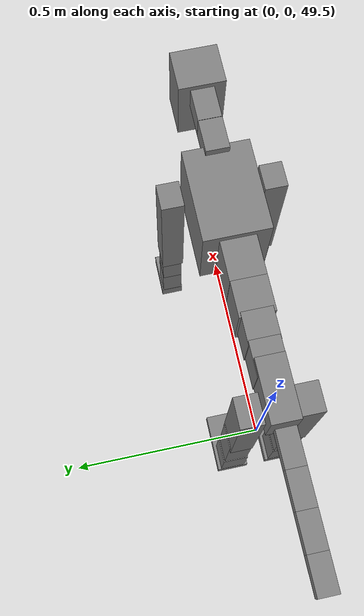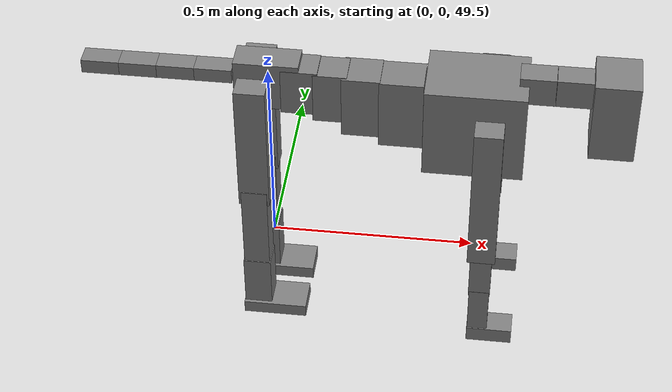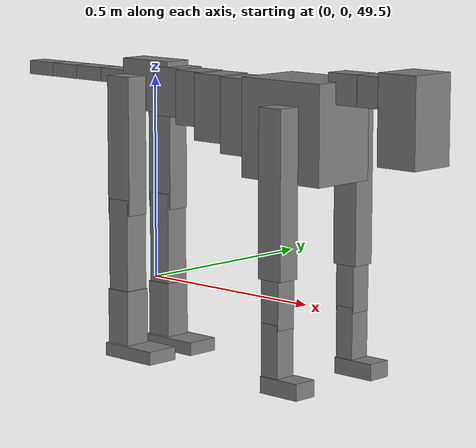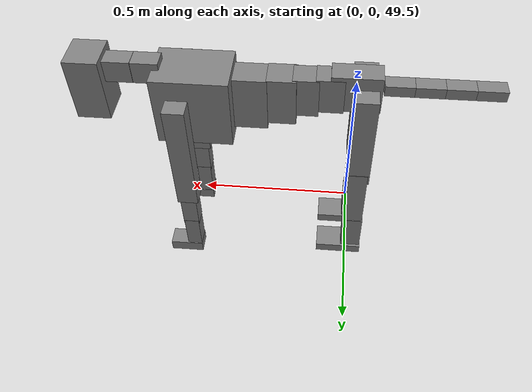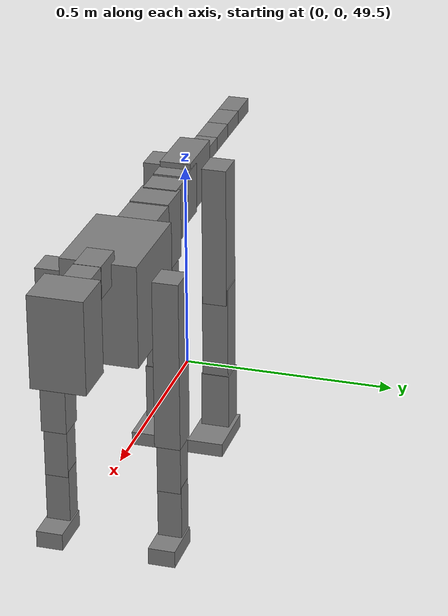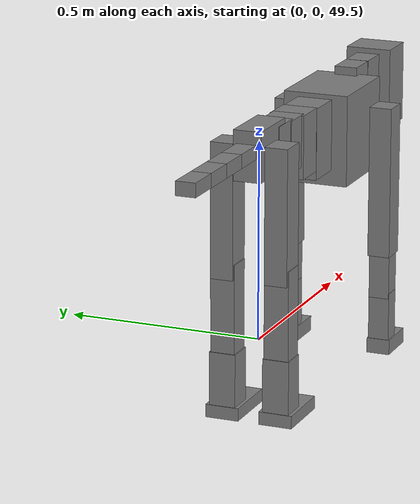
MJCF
<mujoco model="dog">

    <default>
        <joint armature="0.02" stiffness="1" damping="0.2" limited="true"/>
        <geom condim="3" friction="1 0.05 0.05" margin="0.01"/>
        <motor ctrllimited="true" ctrlrange="-1.0 1.0" forcelimited="true" gear="50"/>
    </default>

    <compiler inertiafromgeom="true" angle="radian"/>

    <option timestep="0.016" iterations="50" tolerance="1e-10" solver="Newton" jacobian="dense" cone="pyramidal"/>

    <size nconmax="20000" njmax="60000" nstack="5000000"/>
    <visual>
        <map force="0.1" zfar="30"/>
        <rgba haze="0.15 0.25 0.35 1"/>
        <quality shadowsize="2048"/>
        <global offwidth="800" offheight="800"/>
    </visual>

    <asset>
        <texture type="skybox" builtin="gradient" rgb1="0.3 0.5 0.7" rgb2="0 0 0" width="512" height="512"/>
        <texture name="texplane" type="2d" builtin="checker" rgb1=".2 .3 .4" rgb2=".1 0.15 0.2" width="512" height="512"
                 mark="cross" markrgb=".8 .8 .8"/>
        <texture name="texgeom" type="cube" builtin="flat" mark="cross" width="127" height="1278" rgb1="0.8 0.6 0.4"
                 rgb2="0.8 0.6 0.4" markrgb="1 1 1" random="0.01"/>

        <material name="matplane" reflectance="0.3" texture="texplane" texrepeat="1 1" texuniform="true"/>
        <material name="matgeom" texture="texgeom" texuniform="true" rgba="0.8 0.6 .4 1"/>
    </asset>

    <worldbody>
        <geom name="floor" pos="0 0 0" size="0 0 .25" type="plane" material="matplane" condim="3"/>

        <light directional="false" diffuse=".2 .2 .2" specular="0 0 0" pos="0 0 5" dir="0 0 -1" castshadow="false"/>
        <light mode="targetbodycom" target="torso" directional="false" diffuse=".8 .8 .8" specular="0.3 0.3 0.3"
               pos="0 0 4.0" dir="0 0 -1"/>

        <body name="root" pos="0 0 50">
            <freejoint name="root_1"/>
            <geom type="box" pos="0 0 -0.02" size="0.0774  0.0358  0.063" density="2030"/>

            <body name="spine1" pos="0.054 0 0">
                <joint name="spine1_y" axis="0 1 0" range="0 0.7" limited="true"/>
                <geom type="box" pos="0.02375 0 -0.03" size="0.04375  0.0375  0.05985" density="2030"/>

                <body name="spine2" pos="0.0612 0 0">
                    <joint name="spine2_y" axis="0 1 0" range="-0.15 0.15" limited="true"/>
                    <geom type="box" pos="0.03555  0  -0.04" size="0.04055  0.039  0.06615" density="2030"/>

                    <body name="spine3" pos="0.0730 0 0">
                        <joint name="spine3_y" axis="0 1 0" range="-0.15 0.15" limited="true"/>
                        <geom type="box" pos="0.03555  0  -0.057" size="0.04555  0.0445  0.081" density="2030"/>

                        <body name="spine4" pos="0.0780 0 0">
                            <joint name="spine4_y" axis="0 1 0" range="-0.15 0.15" limited="true"/>
                            <geom type="box" pos="0.05265  0  -0.07" size="0.05265  0.045  0.09135" density="2030"/>

                            <body name="torso" pos="0.1082 0 0">
                                <joint name="torso_y" axis="0 1 0" range="-0.15 0.15" limited="true"/>
                                <geom type="box" pos="0.11925  0  -0.085" size="0.11925  0.085  0.11745"
                                      density="2030"/>

                                <body name="neck1" pos="0.2160  0   0.0180">
                                    <joint name="neck1_y" axis="0 1 0" range="-1.2  -1" limited="true"/>
                                    <geom type="box" pos="0.0423  0  0" size="0.0423  0.03  0.036" density="2325"/>

                                    <body name="neck2" pos="0.0853  0  0">
                                        <joint name="neck2_y" axis="0 1 0" range="0.1  0" limited="true"/>
                                        <geom type="box" pos="0.0423  0  0" size="0.0423  0.03  0.036" density="2325"/>

                                        <body name="head" pos="0.0853  0  0">
                                            <joint name="head_y" axis="0 1 0" range="-0.3  -0.2" limited="true"/>
                                            <geom type="box" pos="0.0531  0  -0.055" size="0.0531  0.06  0.1044"
                                                  density="4030"/>

                                        </body>
                                    </body>
                                </body>

                                <body name="front_shoulder" pos="0.156  0   -0.0480">
                                    <joint name="front_shoulder_y" axis="0 1 0" range="-1 1.5" limited="true"/>
                                    <geom type="box" pos="0 0.13 -0.1699" size="0.0339  0.0290  0.1966" density="1158"/>
                                    <geom type="box" pos="0 -0.13 -0.1699" size="0.0339  0.0290  0.1966"
                                          density="1158"/>

                                    <body name="front_elbow" pos="0  0  -0.3398">
                                        <joint name="front_elbow_y" axis="0 1 0" range="-2 0" limited="true"/>
                                        <geom type="box" pos="0 0.13 -0.0702" size="0.0262  0.0268  0.0702"
                                              density="1081"/>
                                        <geom type="box" pos="0 -0.13 -0.0702" size="0.0262  0.0268  0.0702"
                                              density="1081"/>

                                        <body name="front_wrist" pos="0  0  -0.1404">
                                            <joint name="front_wrist_y" axis="0 1 0" range="-0.2 0" limited="true"/>
                                            <geom type="box" pos="0 0.13 -0.0634" size="0.0246  0.0273  0.0765"
                                                  density="1664"/>
                                            <geom type="box" pos="0 -0.13 -0.0634" size="0.0246  0.0273  0.0765"
                                                  density="1664"/>

                                            <body name="front_finger_end" pos="0  0  -0.1267">
                                                <joint name="front_finger_y" axis="0 1 0" range="-0.4 1"
                                                       limited="true"/>
                                                <geom type="box" pos="0.0305  0.13  -0.0048"
                                                      size="0.0559  0.0305  0.0198" density="1515"/>
                                                <geom type="box" pos="0.0305  -0.13  -0.0048"
                                                      size="0.0559  0.0305  0.0198" density="1515"/>

                                            </body>

                                        </body>
                                    </body>
                                </body>

                            </body>
                        </body>
                    </body>
                </body>
            </body>

            <body name="back_hip" pos="-0.03 0 -0.018">
                <joint name="back_hip_y" axis="0 1 0" range="-1.5 0.3" limited="true"/>
                <geom type="box" pos="0 0.07 -0.1483" size="0.0371  0.0291  0.1711" density="1154"/>
                <geom type="box" pos="0 -0.07 -0.1483" size="0.0371  0.0291  0.1711" density="1154"/>

                <body name="back_knee" pos="0  0  -0.2966">
                    <joint name="back_knee_y" axis="0 1 0" range="0 2.8" limited="true"/>
                    <geom type="box" pos="0 0.07 -0.1112" size="0.0318  0.0314  0.1268" density="1227"/>
                    <geom type="box" pos="0 -0.07 -0.1112" size="0.0318  0.0314  0.1268" density="1227"/>

                    <body name="back_ankle" pos="0  0  -0.2225">
                        <joint name="back_ankle_y" axis="0 1 0" range="-2.2 0" limited="true"/>
                        <geom type="box" pos="0 0.07 -0.0700" size="0.0340  0.0340  0.0812" density="1284"/>
                        <geom type="box" pos="0 -0.07 -0.0700" size="0.0340  0.0340  0.0812" density="1284"/>

                        <body name="back_toe_end" pos="0  0  -0.1399">
                            <joint name="back_toe_y" axis="0 1 0" range="-0.4 1" limited="true"/>
                            <geom type="box" pos="0.0430  0.07  -0.0014" size="0.0788  0.0430  0.0164" density="1515"/>
                            <geom type="box" pos="0.0430  -0.07  -0.0014" size="0.0788  0.0430  0.0164" density="1515"/>

                        </body>
                    </body>
                </body>
            </body>

            <body name="tail1" pos="-0.074 0 -0.006">
                <joint name="tail1_y" axis="0 1 0" range="-0.2 0.2" limited="true"/>
                <geom type="box" pos="-0.0536  0  0" size="0.045  0.025  0.0175" density="1587"/>

                <body name="tail2" pos="-0.09 0 0">
                    <joint name="tail2_y" axis="0 1 0" range="-0.2 0.2" limited="true"/>
                    <geom type="box" pos="-0.0536  0  0" size="0.045  0.025  0.0175" density="1587"/>

                    <body name="tail3" pos="-0.09 0 0">
                        <joint name="tail3_y" axis="0 1 0" range="-0.2 0.2" limited="true"/>
                        <geom type="box" pos="-0.0536  0  0" size="0.045  0.025  0.0175" density="1587"/>

                        <body name="tail4" pos="-0.09 0 0">
                            <joint name="tail4_y" axis="0 1 0" range="-0.2 0.2" limited="true"/>
                            <geom type="box" pos="-0.0536  0  0" size="0.045  0.025  0.0175" density="1587"/>

                        </body>
                    </body>
                </body>
            </body>
        </body>
    </worldbody>

    <actuator>
        <motor joint="spine1_y" forcerange="-150 150     "/>
        <motor joint="spine2_y" forcerange="-150 150     "/>
        <motor joint="spine3_y" forcerange="-150 150     "/>
        <motor joint="spine4_y" forcerange="-150 150     "/>
        <motor joint="torso_y" forcerange="-150 150     "/>
        <motor joint="neck1_y" forcerange="-100 100       "/>
        <motor joint="neck2_y" forcerange="-100 100       "/>
        <motor joint="head_y" forcerange="-150 150       "/>
        <motor joint="front_shoulder_y" forcerange="-144.43 148.64"/>
        <motor joint="front_elbow_y" forcerange="-162.25 132.67"/>
        <motor joint="front_wrist_y" forcerange="-149.48 69.11"/>
        <motor joint="front_finger_y" forcerange="-34.12 88.62"/>
        <motor joint="back_hip_y" forcerange="-294.54 293.11"/>
        <motor joint="back_knee_y" forcerange="-261.83 394.18"/>
        <motor joint="back_angle_y" forcerange="-237.74 207.03"/>
        <motor joint="back_toe_y" forcerange="-131.36 132.52"/>
        <motor joint="tail1_y" forcerange="-50 50     "/>
        <motor joint="tail2_y" forcerange="-50 50     "/>
        <motor joint="tail3_y" forcerange="-50 50     "/>
        <motor joint="tail4_y" forcerange="-50 50     "/>
    </actuator>
</mujoco>
